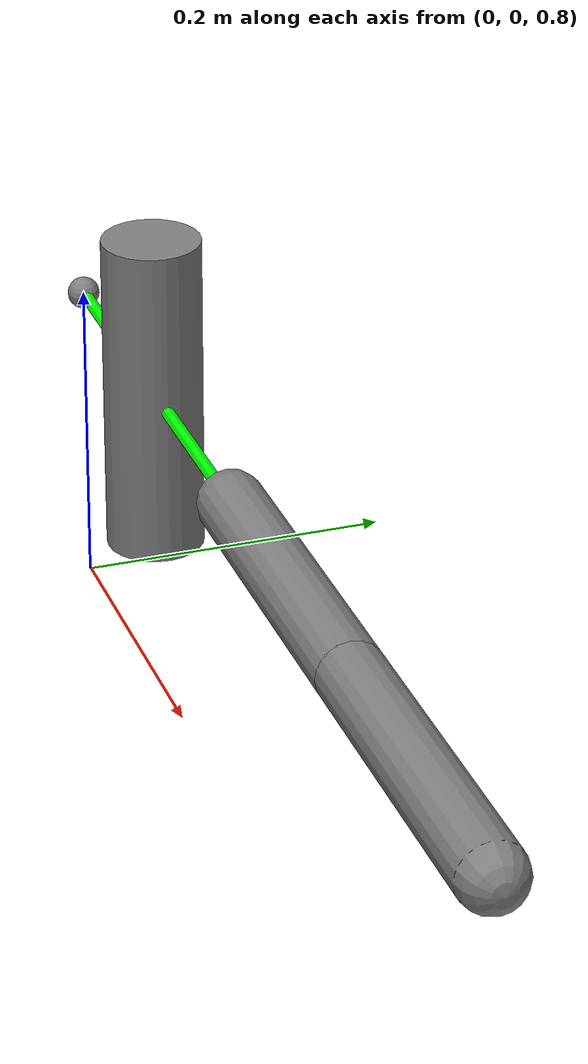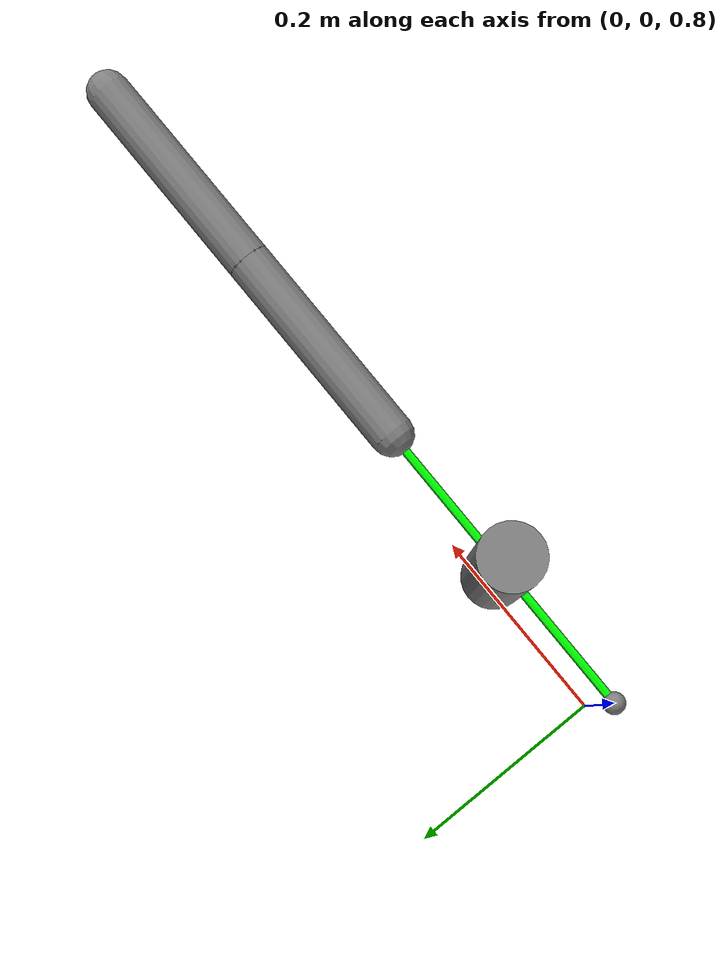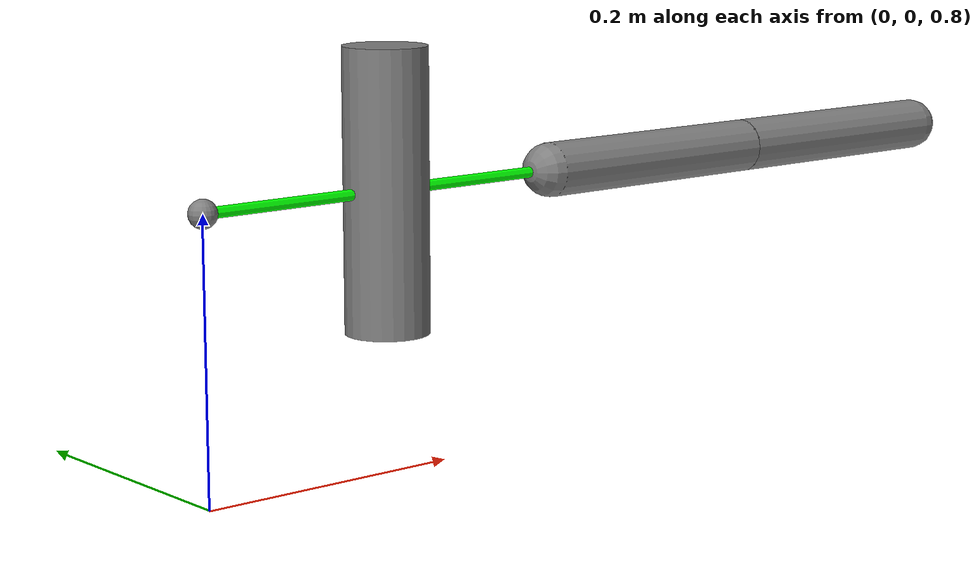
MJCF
<mujoco model="tendons_spatial_fixed">
  <!-- Covers: a spatial tendon routed through sites (with a pulley + geom wrap),
       and a fixed tendon combining two joints with coefficients. Exercises
       tendon_* and wrap_* arrays. -->
  <compiler angle="radian"/>
  <worldbody>
    <site name="s0" pos="0 0 1" size="0.01"/>
    <geom name="wrap_cyl" type="cylinder" size="0.03 0.1" pos="0.15 0 1" euler="0 0 0"/>
    <body name="b1" pos="0.3 0 1">
      <joint name="tj1" type="hinge" axis="0 1 0"/>
      <geom name="b1g" type="capsule" size="0.02" fromto="0 0 0 0.2 0 0"/>
      <site name="s1" pos="0.2 0 0" size="0.01"/>
      <body name="b2" pos="0.2 0 0">
        <joint name="tj2" type="hinge" axis="0 1 0"/>
        <geom name="b2g" type="capsule" size="0.02" fromto="0 0 0 0.2 0 0"/>
        <site name="s2" pos="0.2 0 0" size="0.01"/>
      </body>
    </body>
  </worldbody>
  <tendon>
    <spatial name="sp" width="0.004" rgba="0 1 0 1">
      <site site="s0"/>
      <geom geom="wrap_cyl"/>
      <site site="s1"/>
      <site site="s2"/>
    </spatial>
    <fixed name="fx">
      <joint joint="tj1" coef="1"/>
      <joint joint="tj2" coef="-1"/>
    </fixed>
  </tendon>
</mujoco>
